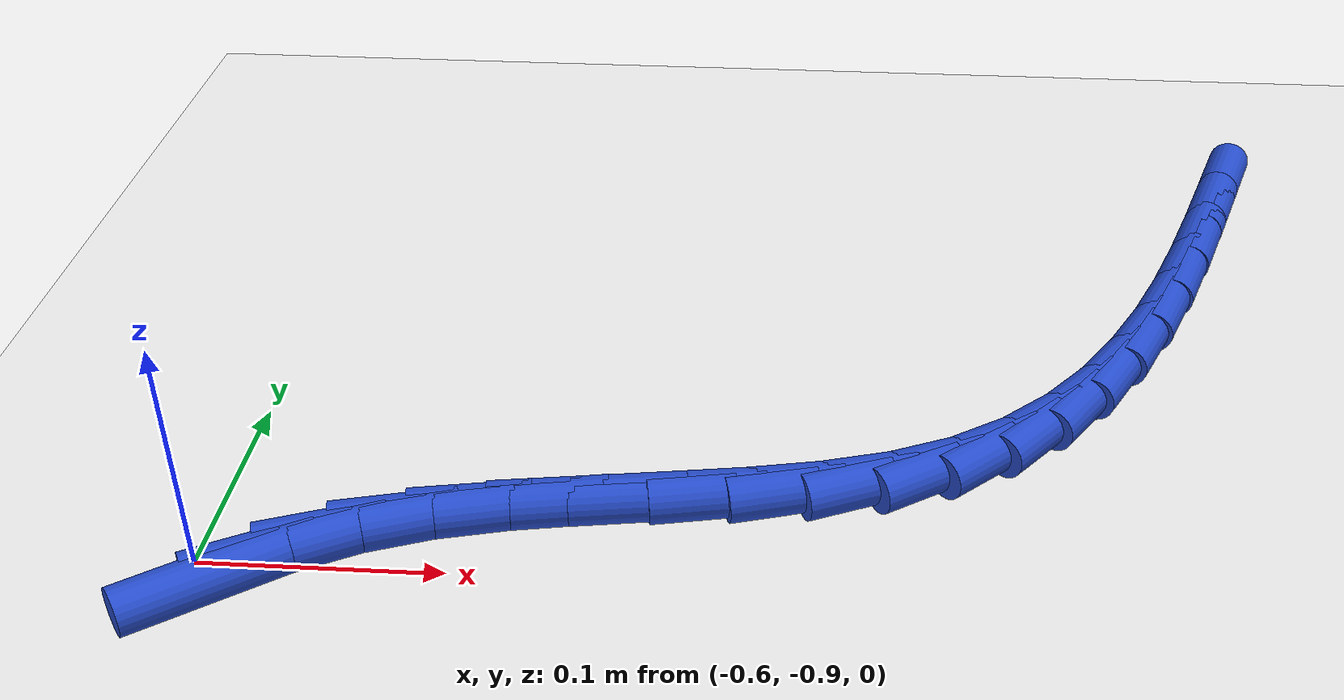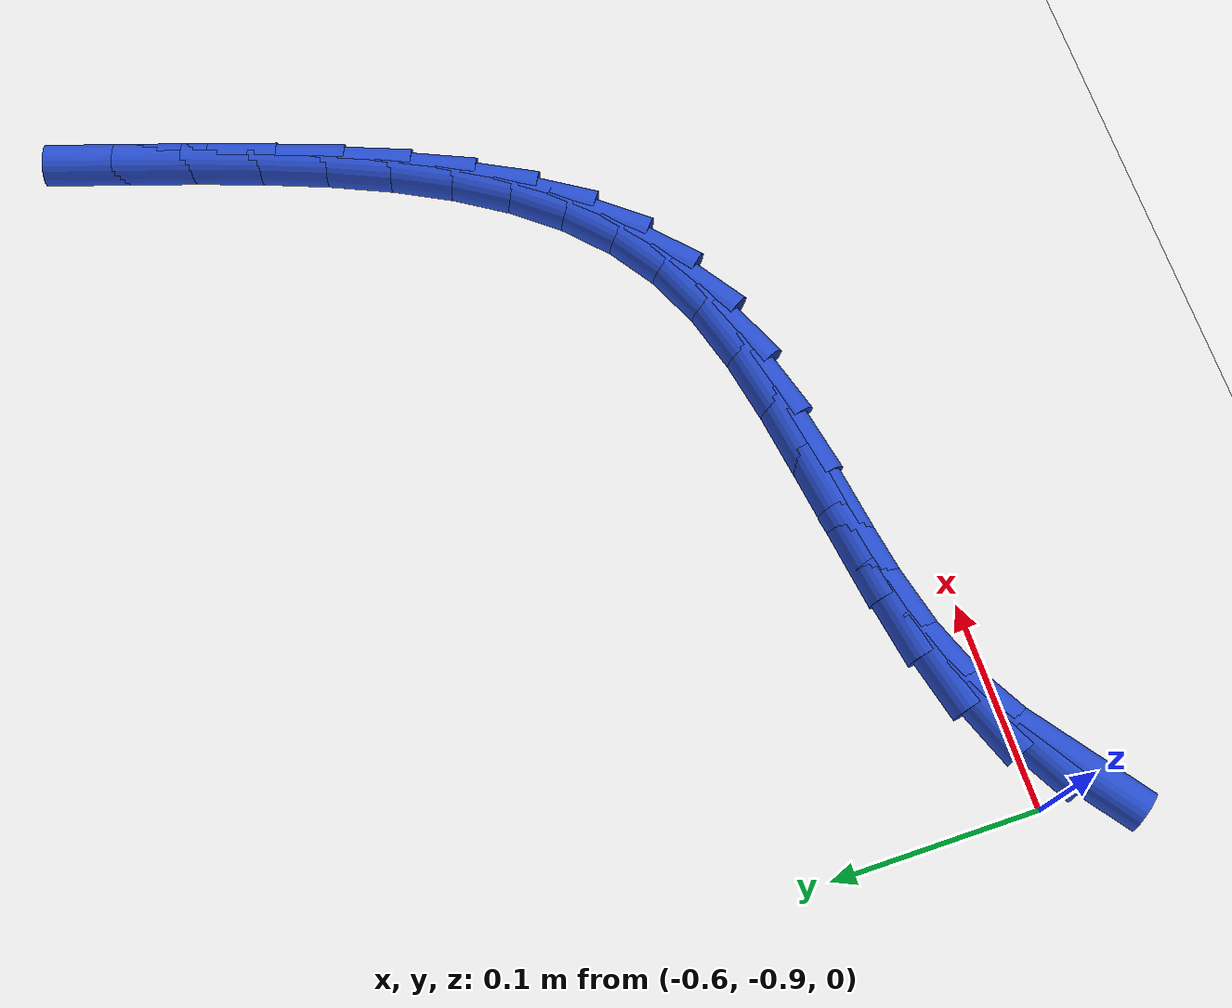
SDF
<sdf version="1.6">
 <world name="default">
  <model name="ground_plane">
   <static>1</static>
   <link name="link">
    <collision name="collision">
     <geometry><plane><normal>0 0 1</normal><size>100 100</size></plane></geometry>
     <surface><friction><ode><mu>100</mu><mu2>50</mu2></ode></friction></surface>
    </collision>
    <visual name="visual">
     <cast_shadows>0</cast_shadows>
     <geometry><plane><normal>0 0 1</normal><size>100 100</size></plane></geometry>
     <material>
      <script><uri>file://media/materials/scripts/gazebo.material</uri><name>Gazebo/WhiteGlow</name></script>
     </material>
    </visual>
   </link>
  </model>
  <model name="line">
   <link name="link_201">
    <pose>-0.5837334697017327 -0.9171648944270224 0.01 0 1.57 0.6403309506718328</pose>
    <collision name="collision">
     <geometry><cylinder><radius>0.01</radius><length>0.08</length></cylinder></geometry>
    </collision>
    <visual name="visual">
     <material>
      <script><name>Gazebo/Blue</name><uri>file://media/materials/scripts/gazebo.material</uri></script>
     </material>
     <geometry><cylinder><radius>0.01</radius><length>0.08</length></cylinder></geometry>
    </visual>
   </link>
   <link name="link_202">
    <pose>-0.5613111194489655 -0.9004589349043333 0.01 0 1.57 0.5093094337954056</pose>
    <collision name="collision">
     <geometry><cylinder><radius>0.01</radius><length>0.08</length></cylinder></geometry>
    </collision>
    <visual name="visual">
     <material>
      <script><name>Gazebo/Blue</name><uri>file://media/materials/scripts/gazebo.material</uri></script>
     </material>
     <geometry><cylinder><radius>0.01</radius><length>0.08</length></cylinder></geometry>
    </visual>
   </link>
   <link name="link_203">
    <pose>-0.5367490907439503 -0.8867422102019478 0.01 0 1.57 0.3649976899779617</pose>
    <collision name="collision">
     <geometry><cylinder><radius>0.01</radius><length>0.08</length></cylinder></geometry>
    </collision>
    <visual name="visual">
     <material>
      <script><name>Gazebo/Blue</name><uri>file://media/materials/scripts/gazebo.material</uri></script>
     </material>
     <geometry><cylinder><radius>0.01</radius><length>0.08</length></cylinder></geometry>
    </visual>
   </link>
   <link name="link_204">
    <pose>-0.5096289507054572 -0.8763790782603567 0.01 0 1.57 0.24782185569090542</pose>
    <collision name="collision">
     <geometry><cylinder><radius>0.01</radius><length>0.08</length></cylinder></geometry>
    </collision>
    <visual name="visual">
     <material>
      <script><name>Gazebo/Blue</name><uri>file://media/materials/scripts/gazebo.material</uri></script>
     </material>
     <geometry><cylinder><radius>0.01</radius><length>0.08</length></cylinder></geometry>
    </visual>
   </link>
   <link name="link_205">
    <pose>-0.48022469022122516 -0.8689391226183764 0.01 0 1.57 0.17784410038526954</pose>
    <collision name="collision">
     <geometry><cylinder><radius>0.01</radius><length>0.08</length></cylinder></geometry>
    </collision>
    <visual name="visual">
     <material>
      <script><name>Gazebo/Blue</name><uri>file://media/materials/scripts/gazebo.material</uri></script>
     </material>
     <geometry><cylinder><radius>0.01</radius><length>0.08</length></cylinder></geometry>
    </visual>
   </link>
   <link name="link_206">
    <pose>-0.44933707515512056 -0.8633872865854857 0.01 0 1.57 0.14828140925583594</pose>
    <collision name="collision">
     <geometry><cylinder><radius>0.01</radius><length>0.08</length></cylinder></geometry>
    </collision>
    <visual name="visual">
     <material>
      <script><name>Gazebo/Blue</name><uri>file://media/materials/scripts/gazebo.material</uri></script>
     </material>
     <geometry><cylinder><radius>0.01</radius><length>0.08</length></cylinder></geometry>
    </visual>
   </link>
   <link name="link_207">
    <pose>-0.4177800654779982 -0.8586733690769963 0.01 0 1.57 0.15555623328808044</pose>
    <collision name="collision">
     <geometry><cylinder><radius>0.01</radius><length>0.08</length></cylinder></geometry>
    </collision>
    <visual name="visual">
     <material>
      <script><name>Gazebo/Blue</name><uri>file://media/materials/scripts/gazebo.material</uri></script>
     </material>
     <geometry><cylinder><radius>0.01</radius><length>0.08</length></cylinder></geometry>
    </visual>
   </link>
   <link name="link_208">
    <pose>-0.38636762116071216 -0.8537471690082201 0.01 0 1.57 0.20048468860534038</pose>
    <collision name="collision">
     <geometry><cylinder><radius>0.01</radius><length>0.08</length></cylinder></geometry>
    </collision>
    <visual name="visual">
     <material>
      <script><name>Gazebo/Blue</name><uri>file://media/materials/scripts/gazebo.material</uri></script>
     </material>
     <geometry><cylinder><radius>0.01</radius><length>0.08</length></cylinder></geometry>
    </visual>
   </link>
   <link name="link_209">
    <pose>-0.3559137021741192 -0.8475584852944693 0.01 0 1.57 0.2881569160815126</pose>
    <collision name="collision">
     <geometry><cylinder><radius>0.01</radius><length>0.08</length></cylinder></geometry>
    </collision>
    <visual name="visual">
     <material>
      <script><name>Gazebo/Blue</name><uri>file://media/materials/scripts/gazebo.material</uri></script>
     </material>
     <geometry><cylinder><radius>0.01</radius><length>0.08</length></cylinder></geometry>
    </visual>
   </link>
   <link name="link_210">
    <pose>-0.32723226848907355 -0.8390571168510557 0.01 0 1.57 0.42649108158035093</pose>
    <collision name="collision">
     <geometry><cylinder><radius>0.01</radius><length>0.08</length></cylinder></geometry>
    </collision>
    <visual name="visual">
     <material>
      <script><name>Gazebo/Blue</name><uri>file://media/materials/scripts/gazebo.material</uri></script>
     </material>
     <geometry><cylinder><radius>0.01</radius><length>0.08</length></cylinder></geometry>
    </visual>
   </link>
   <link name="link_211">
    <pose>-0.3011331771019134 -0.827198189026467 0.01 0 1.57 0.5991263291684654</pose>
    <collision name="collision">
     <geometry><cylinder><radius>0.01</radius><length>0.08</length></cylinder></geometry>
    </collision>
    <visual name="visual">
     <material>
      <script><name>Gazebo/Blue</name><uri>file://media/materials/scripts/gazebo.material</uri></script>
     </material>
     <geometry><cylinder><radius>0.01</radius><length>0.08</length></cylinder></geometry>
    </visual>
   </link>
   <link name="link_212">
    <pose>-0.2780447449522292 -0.8114321379754872 0.01 0 1.57 0.7601076808319891</pose>
    <collision name="collision">
     <geometry><cylinder><radius>0.01</radius><length>0.08</length></cylinder></geometry>
    </collision>
    <visual name="visual">
     <material>
      <script><name>Gazebo/Blue</name><uri>file://media/materials/scripts/gazebo.material</uri></script>
     </material>
     <geometry><cylinder><radius>0.01</radius><length>0.08</length></cylinder></geometry>
    </visual>
   </link>
   <link name="link_213">
    <pose>-0.25770922277211705 -0.792100042920114 0.01 0 1.57 0.8976643403428751</pose>
    <collision name="collision">
     <geometry><cylinder><radius>0.01</radius><length>0.08</length></cylinder></geometry>
    </collision>
    <visual name="visual">
     <material>
      <script><name>Gazebo/Blue</name><uri>file://media/materials/scripts/gazebo.material</uri></script>
     </material>
     <geometry><cylinder><radius>0.01</radius><length>0.08</length></cylinder></geometry>
    </visual>
   </link>
   <link name="link_214">
    <pose>-0.23979719910848812 -0.7696360140868156 0.01 0 1.57 1.0095783602977892</pose>
    <collision name="collision">
     <geometry><cylinder><radius>0.01</radius><length>0.08</length></cylinder></geometry>
    </collision>
    <visual name="visual">
     <material>
      <script><name>Gazebo/Blue</name><uri>file://media/materials/scripts/gazebo.material</uri></script>
     </material>
     <geometry><cylinder><radius>0.01</radius><length>0.08</length></cylinder></geometry>
    </visual>
   </link>
   <link name="link_215">
    <pose>-0.22397926250825342 -0.7444741617020592 0.01 0 1.57 1.0972664145216975</pose>
    <collision name="collision">
     <geometry><cylinder><radius>0.01</radius><length>0.08</length></cylinder></geometry>
    </collision>
    <visual name="visual">
     <material>
      <script><name>Gazebo/Blue</name><uri>file://media/materials/scripts/gazebo.material</uri></script>
     </material>
     <geometry><cylinder><radius>0.01</radius><length>0.08</length></cylinder></geometry>
    </visual>
   </link>
   <link name="link_216">
    <pose>-0.20992600151832488 -0.7170485959923141 0.01 0 1.57 1.163594657515613</pose>
    <collision name="collision">
     <geometry><cylinder><radius>0.01</radius><length>0.08</length></cylinder></geometry>
    </collision>
    <visual name="visual">
     <material>
      <script><name>Gazebo/Blue</name><uri>file://media/materials/scripts/gazebo.material</uri></script>
     </material>
     <geometry><cylinder><radius>0.01</radius><length>0.08</length></cylinder></geometry>
    </visual>
   </link>
   <link name="link_217">
    <pose>-0.19730800468561327 -0.6877934271840479 0.01 0 1.57 1.2115067208015684</pose>
    <collision name="collision">
     <geometry><cylinder><radius>0.01</radius><length>0.08</length></cylinder></geometry>
    </collision>
    <visual name="visual">
     <material>
      <script><name>Gazebo/Blue</name><uri>file://media/materials/scripts/gazebo.material</uri></script>
     </material>
     <geometry><cylinder><radius>0.01</radius><length>0.08</length></cylinder></geometry>
    </visual>
   </link>
   <link name="link_218">
    <pose>-0.18579586055702996 -0.6571427655037286 0.01 0 1.57 1.243409250118552</pose>
    <collision name="collision">
     <geometry><cylinder><radius>0.01</radius><length>0.08</length></cylinder></geometry>
    </collision>
    <visual name="visual">
     <material>
      <script><name>Gazebo/Blue</name><uri>file://media/materials/scripts/gazebo.material</uri></script>
     </material>
     <geometry><cylinder><radius>0.01</radius><length>0.08</length></cylinder></geometry>
    </visual>
   </link>
   <link name="link_219">
    <pose>-0.175060157679486 -0.6255307211778244 0.01 0 1.57 1.2609779002948431</pose>
    <collision name="collision">
     <geometry><cylinder><radius>0.01</radius><length>0.08</length></cylinder></geometry>
    </collision>
    <visual name="visual">
     <material>
      <script><name>Gazebo/Blue</name><uri>file://media/materials/scripts/gazebo.material</uri></script>
     </material>
     <geometry><cylinder><radius>0.01</radius><length>0.08</length></cylinder></geometry>
    </visual>
   </link>
   <link name="link_220">
    <pose>-0.1647714845998927 -0.5933914044328028 0.01 0 1.57 1.2651325197262921</pose>
    <collision name="collision">
     <geometry><cylinder><radius>0.01</radius><length>0.08</length></cylinder></geometry>
    </collision>
    <visual name="visual">
     <material>
      <script><name>Gazebo/Blue</name><uri>file://media/materials/scripts/gazebo.material</uri></script>
     </material>
     <geometry><cylinder><radius>0.01</radius><length>0.08</length></cylinder></geometry>
    </visual>
   </link>
  </model>
 </world>
</sdf>
